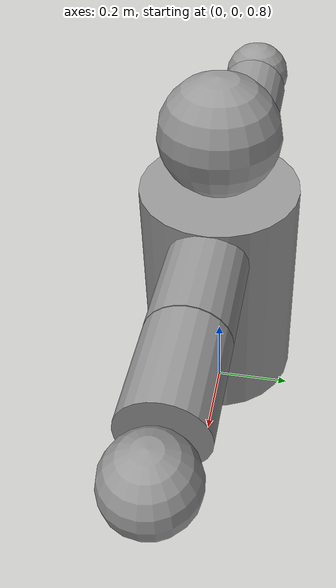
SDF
<?xml version='1.0'?>
<sdf version='1.7'>
  <model name='human'>
    <link name='head'>
      <inertial>
        <mass>1</mass>
        <inertia>
          <ixx>0.1</ixx>
          <ixy>0</ixy>
          <ixz>0</ixz>
          <iyy>0.1</iyy>
          <iyz>0</iyz>
          <izz>0.1</izz>
        </inertia>
        <pose>0 0 0 0 -0 0</pose>
      </inertial>
      <self_collide>0</self_collide>
      <enable_wind>0</enable_wind>
      <kinematic>0</kinematic>
      <pose>0 0 1.65 0 -0 0</pose>
      <gravity>0</gravity>
      <visual name='visual'>
        <geometry>
          <sphere>
            <radius>0.15</radius>
          </sphere>
        </geometry>
        <material>
          <script>
            <name>Gazebo/Grey</name>
            <uri>file://media/materials/scripts/gazebo.material</uri>
          </script>
          <shader type='pixel'>
            <normal_map>__default__</normal_map>
          </shader>
          <ambient>0.3 0.3 0.3 1</ambient>
          <diffuse>0.7 0.7 0.7 1</diffuse>
          <specular>0.01 0.01 0.01 1</specular>
          <emissive>0 0 0 1</emissive>
        </material>
        <pose>0 0 0 0 -0 0</pose>
        <transparency>0</transparency>
        <cast_shadows>1</cast_shadows>
      </visual>
    </link>
    <link name='arm_left'>
      <inertial>
        <mass>1</mass>
        <inertia>
          <ixx>0.145833</ixx>
          <ixy>0</ixy>
          <ixz>0</ixz>
          <iyy>0.145833</iyy>
          <iyz>0</iyz>
          <izz>0.125</izz>
        </inertia>
        <pose>0 0 0 0 -0 0</pose>
      </inertial>
      <pose>0.55 0 1.4 -3.14159 -1.57079 -3.14159</pose>
      <gravity>0</gravity>
      <self_collide>0</self_collide>
      <kinematic>0</kinematic>
      <enable_wind>0</enable_wind>
      <visual name='visual'>
        <pose>0 0 0 0 -0 0</pose>
        <geometry>
          <cylinder>
            <radius>0.1</radius>
            <length>0.25</length>
          </cylinder>
        </geometry>
        <material>
          <lighting>1</lighting>
          <script>
            <uri>file://media/materials/scripts/gazebo.material</uri>
            <name>Gazebo/Grey</name>
          </script>
          <shader type='pixel'>
            <normal_map>__default__</normal_map>
          </shader>
          <ambient>0.3 0.3 0.3 1</ambient>
          <diffuse>0.7 0.7 0.7 1</diffuse>
          <specular>0.01 0.01 0.01 1</specular>
          <emissive>0 0 0 1</emissive>
        </material>
        <transparency>0</transparency>
        <cast_shadows>1</cast_shadows>
      </visual>
    </link>
    <link name='arm_right'>
      <inertial>
        <mass>1</mass>
        <inertia>
          <ixx>0.145833</ixx>
          <ixy>0</ixy>
          <ixz>0</ixz>
          <iyy>0.145833</iyy>
          <iyz>0</iyz>
          <izz>0.125</izz>
        </inertia>
        <pose>-0 0 0 0 -0 0</pose>
      </inertial>
      <pose>-0.55 0 1.4 -3.14159 -1.55869 -3.14159</pose>
      <gravity>0</gravity>
      <self_collide>0</self_collide>
      <kinematic>0</kinematic>
      <enable_wind>0</enable_wind>
      <visual name='visual'>
        <pose>0 0 0 0 -0 0</pose>
        <geometry>
          <cylinder>
            <radius>0.1</radius>
            <length>0.25</length>
          </cylinder>
        </geometry>
        <material>
          <lighting>1</lighting>
          <script>
            <uri>file://media/materials/scripts/gazebo.material</uri>
            <name>Gazebo/Grey</name>
          </script>
          <shader type='pixel'>
            <normal_map>__default__</normal_map>
          </shader>
          <ambient>0.3 0.3 0.3 1</ambient>
          <diffuse>0.7 0.7 0.7 1</diffuse>
          <specular>0.01 0.01 0.01 1</specular>
          <emissive>0 0 0 1</emissive>
        </material>
        <transparency>0</transparency>
        <cast_shadows>1</cast_shadows>
      </visual>
    </link>
    <link name='body'>
      <inertial>
        <mass>1</mass>
        <inertia>
          <ixx>0.145833</ixx>
          <ixy>0</ixy>
          <ixz>0</ixz>
          <iyy>0.145833</iyy>
          <iyz>0</iyz>
          <izz>0.125</izz>
        </inertia>
        <pose>0 0 0 0 -0 0</pose>
      </inertial>
      <pose>0 0 1.2 0 -0 0</pose>
      <gravity>0</gravity>
      <self_collide>0</self_collide>
      <kinematic>0</kinematic>
      <enable_wind>0</enable_wind>
      <visual name='visual'>
        <pose>0 0 0 0 -0 0</pose>
        <geometry>
          <cylinder>
            <radius>0.2</radius>
            <length>0.6</length>
          </cylinder>
        </geometry>
        <material>
          <lighting>1</lighting>
          <script>
            <uri>file://media/materials/scripts/gazebo.material</uri>
            <name>Gazebo/Grey</name>
          </script>
          <shader type='pixel'>
            <normal_map>__default__</normal_map>
          </shader>
          <ambient>0.3 0.3 0.3 1</ambient>
          <diffuse>0.7 0.7 0.7 1</diffuse>
          <specular>0.01 0.01 0.01 1</specular>
          <emissive>0 0 0 1</emissive>
        </material>
        <transparency>0</transparency>
        <cast_shadows>1</cast_shadows>
      </visual>
    </link>
    <link name='hand_left'>
      <inertial>
        <mass>1</mass>
        <inertia>
          <ixx>0.1</ixx>
          <ixy>0</ixy>
          <ixz>0</ixz>
          <iyy>0.1</iyy>
          <iyz>0</iyz>
          <izz>0.1</izz>
        </inertia>
        <pose>0 0 0 0 -0 0</pose>
      </inertial>
      <pose>0.775 0 1.4 0 -0 0</pose>
      <gravity>0</gravity>
      <self_collide>0</self_collide>
      <kinematic>0</kinematic>
      <enable_wind>0</enable_wind>
      <visual name='visual'>
        <pose>0 0 0 0 -0 0</pose>
        <geometry>
          <sphere>
            <radius>0.1</radius>
          </sphere>
        </geometry>
        <material>
          <lighting>1</lighting>
          <script>
            <uri>file://media/materials/scripts/gazebo.material</uri>
            <name>Gazebo/Grey</name>
          </script>
          <shader type='pixel'>
            <normal_map>__default__</normal_map>
          </shader>
          <ambient>0.3 0.3 0.3 1</ambient>
          <diffuse>0.7 0.7 0.7 1</diffuse>
          <specular>0.01 0.01 0.01 1</specular>
          <emissive>0 0 0 1</emissive>
        </material>
        <transparency>0</transparency>
        <cast_shadows>1</cast_shadows>
      </visual>
    </link>
    <link name='hand_right'>
      <inertial>
        <mass>1</mass>
        <inertia>
          <ixx>0.1</ixx>
          <ixy>0</ixy>
          <ixz>0</ixz>
          <iyy>0.1</iyy>
          <iyz>0</iyz>
          <izz>0.1</izz>
        </inertia>
        <pose>0 0 0 0 -0 0</pose>
      </inertial>
      <pose>-0.775 0 1.4 0 -0 0</pose>
      <gravity>0</gravity>
      <self_collide>0</self_collide>
      <kinematic>0</kinematic>
      <enable_wind>0</enable_wind>
      <visual name='visual'>
        <pose>0 0 0 0 -0 0</pose>
        <geometry>
          <sphere>
            <radius>0.1</radius>
          </sphere>
        </geometry>
        <material>
          <lighting>1</lighting>
          <script>
            <uri>file://media/materials/scripts/gazebo.material</uri>
            <name>Gazebo/Grey</name>
          </script>
          <shader type='pixel'>
            <normal_map>__default__</normal_map>
          </shader>
          <ambient>0.3 0.3 0.3 1</ambient>
          <diffuse>0.7 0.7 0.7 1</diffuse>
          <specular>0.01 0.01 0.01 1</specular>
          <emissive>0 0 0 1</emissive>
        </material>
        <transparency>0</transparency>
        <cast_shadows>1</cast_shadows>
      </visual>
    </link>
    <link name='shoulder_left'>
      <inertial>
        <mass>1</mass>
        <inertia>
          <ixx>0.145833</ixx>
          <ixy>0</ixy>
          <ixz>0</ixz>
          <iyy>0.145833</iyy>
          <iyz>0</iyz>
          <izz>0.125</izz>
        </inertia>
        <pose>0 0 0 0 -0 0</pose>
      </inertial>
      <pose>0.3 0 1.4 -3.14159 -1.55869 -3.14159</pose>
      <gravity>0</gravity>
      <self_collide>0</self_collide>
      <kinematic>0</kinematic>
      <enable_wind>0</enable_wind>
      <visual name='visual'>
        <pose>0 0 0 0 -0 0</pose>
        <geometry>
          <cylinder>
            <radius>0.1</radius>
            <length>0.25</length>
          </cylinder>
        </geometry>
        <material>
          <lighting>1</lighting>
          <script>
            <uri>file://media/materials/scripts/gazebo.material</uri>
            <name>Gazebo/Grey</name>
          </script>
          <shader type='pixel'>
            <normal_map>__default__</normal_map>
          </shader>
          <ambient>0.3 0.3 0.3 1</ambient>
          <diffuse>0.7 0.7 0.7 1</diffuse>
          <specular>0.01 0.01 0.01 1</specular>
          <emissive>0 0 0 1</emissive>
        </material>
        <transparency>0</transparency>
        <cast_shadows>1</cast_shadows>
      </visual>
    </link>
    <link name='shoulder_right'>
      <inertial>
        <mass>1</mass>
        <inertia>
          <ixx>0.145833</ixx>
          <ixy>0</ixy>
          <ixz>0</ixz>
          <iyy>0.145833</iyy>
          <iyz>0</iyz>
          <izz>0.125</izz>
        </inertia>
        <pose>0 0 0 0 -0 0</pose>
      </inertial>
      <pose>-0.3 0 1.4 -3.14159 -1.55869 -3.14159</pose>
      <gravity>0</gravity>
      <self_collide>0</self_collide>
      <kinematic>0</kinematic>
      <enable_wind>0</enable_wind>
      <visual name='visual'>
        <pose>0 0 0 0 -0 0</pose>
        <geometry>
          <cylinder>
            <radius>0.1</radius>
            <length>0.25</length>
          </cylinder>
        </geometry>
        <material>
          <lighting>1</lighting>
          <script>
            <uri>file://media/materials/scripts/gazebo.material</uri>
            <name>Gazebo/Grey</name>
          </script>
          <shader type='pixel'>
            <normal_map>__default__</normal_map>
          </shader>
          <ambient>0.3 0.3 0.3 1</ambient>
          <diffuse>0.7 0.7 0.7 1</diffuse>
          <specular>0.01 0.01 0.01 1</specular>
          <emissive>0 0 0 1</emissive>
        </material>
        <transparency>0</transparency>
        <cast_shadows>1</cast_shadows>
      </visual>
    </link>
    <static>0</static>
    <allow_auto_disable>1</allow_auto_disable>
  </model>
</sdf>
